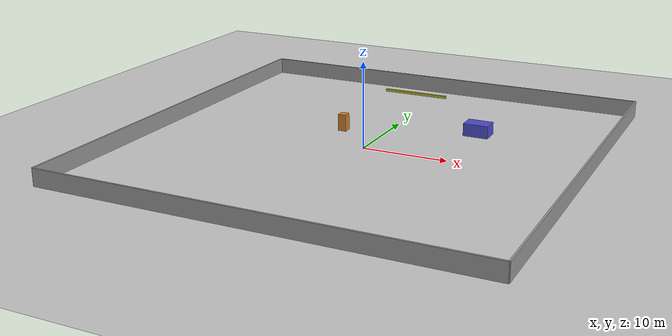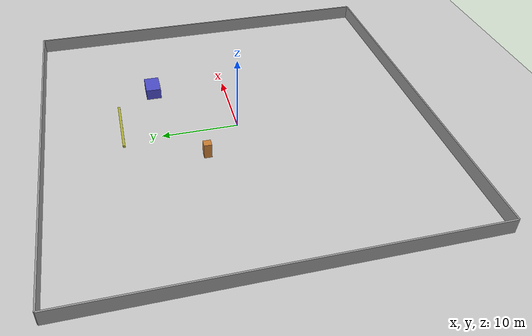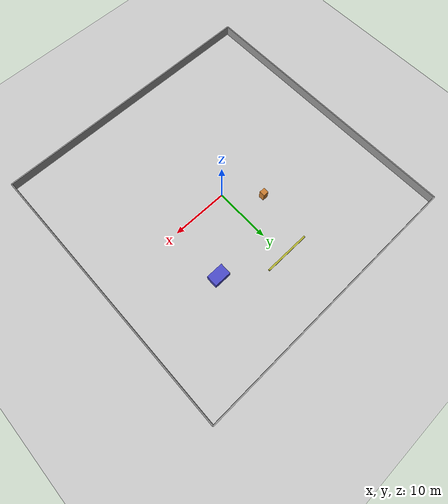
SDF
<?xml version="1.0" ?>
<sdf version="1.8">
  <world name="subestacao">

    <physics name="default" type="ignored">
      <max_step_size>0.004</max_step_size>
      <real_time_factor>1.0</real_time_factor>
    </physics>

    <plugin filename="ignition-gazebo-physics-system"
            name="ignition::gazebo::systems::Physics"/>
    <plugin filename="ignition-gazebo-sensors-system"
            name="ignition::gazebo::systems::Sensors">
      <render_engine>ogre</render_engine>
    </plugin>
    <plugin filename="ignition-gazebo-scene-broadcaster-system"
            name="ignition::gazebo::systems::SceneBroadcaster"/>
    <plugin filename="ignition-gazebo-user-commands-system"
            name="ignition::gazebo::systems::UserCommands"/>

    <!-- Sol (luz direcional) -->
    <light type="directional" name="sun">
      <cast_shadows>true</cast_shadows>
      <pose>0 0 10 0 0 0</pose>
      <diffuse>1 1 1 1</diffuse>
      <specular>0.4 0.4 0.4 1</specular>
      <direction>-0.5 0.1 -0.9</direction>
    </light>

    <!-- Chão -->
    <model name="ground_plane">
      <static>true</static>
      <link name="link">
        <collision name="collision">
          <geometry><plane><normal>0 0 1</normal><size>100 100</size></plane></geometry>
        </collision>
        <visual name="visual">
          <geometry><plane><normal>0 0 1</normal><size>100 100</size></plane></geometry>
          <material>
            <ambient>0.8 0.8 0.8 1</ambient>
            <diffuse>0.8 0.8 0.8 1</diffuse>
          </material>
        </visual>
      </link>
    </model>

    <!-- ============ Cerca perimetral (4 lados) ============ -->
    <model name="cerca_norte">
      <static>true</static>
      <pose>0 25 1 0 0 0</pose>
      <link name="link">
        <collision name="col"><geometry><box><size>50 0.2 2</size></box></geometry></collision>
        <visual name="vis">
          <geometry><box><size>50 0.2 2</size></box></geometry>
          <material><diffuse>0.6 0.6 0.6 1</diffuse></material>
        </visual>
      </link>
    </model>
    <model name="cerca_sul">
      <static>true</static>
      <pose>0 -25 1 0 0 0</pose>
      <link name="link">
        <collision name="col"><geometry><box><size>50 0.2 2</size></box></geometry></collision>
        <visual name="vis">
          <geometry><box><size>50 0.2 2</size></box></geometry>
          <material><diffuse>0.6 0.6 0.6 1</diffuse></material>
        </visual>
      </link>
    </model>
    <model name="cerca_leste">
      <static>true</static>
      <pose>25 0 1 0 0 1.5708</pose>
      <link name="link">
        <collision name="col"><geometry><box><size>50 0.2 2</size></box></geometry></collision>
        <visual name="vis">
          <geometry><box><size>50 0.2 2</size></box></geometry>
          <material><diffuse>0.6 0.6 0.6 1</diffuse></material>
        </visual>
      </link>
    </model>
    <model name="cerca_oeste">
      <static>true</static>
      <pose>-25 0 1 0 0 1.5708</pose>
      <link name="link">
        <collision name="col"><geometry><box><size>50 0.2 2</size></box></geometry></collision>
        <visual name="vis">
          <geometry><box><size>50 0.2 2</size></box></geometry>
          <material><diffuse>0.6 0.6 0.6 1</diffuse></material>
        </visual>
      </link>
    </model>

    <!-- ============ Transformador 1 (anomalia térmica) ============ -->
    <model name="transformador_1">
      <static>true</static>
      <pose>10 10 0.75 0 0 0</pose>
      <link name="link">
        <collision name="col"><geometry><box><size>3 2 1.5</size></box></geometry></collision>
        <visual name="vis">
          <geometry><box><size>3 2 1.5</size></box></geometry>
          <material><diffuse>0.3 0.3 0.8 1</diffuse></material>
        </visual>
      </link>
    </model>

    <!-- ============ Disjuntor 1 (anomalia acústica) ============ -->
    <model name="disjuntor_1">
      <static>true</static>
      <pose>-5 5 1.0 0 0 0</pose>
      <link name="link">
        <collision name="col"><geometry><box><size>1 1 2</size></box></geometry></collision>
        <visual name="vis">
          <geometry><box><size>1 1 2</size></box></geometry>
          <material><diffuse>0.8 0.5 0.2 1</diffuse></material>
        </visual>
      </link>
    </model>

    <!-- ============ Barramento (anomalia térmica) ============ -->
    <model name="barramento_entrada">
      <static>true</static>
      <pose>0 15 2.5 0 0 0</pose>
      <link name="link">
        <collision name="col"><geometry><box><size>8 0.3 0.3</size></box></geometry></collision>
        <visual name="vis">
          <geometry><box><size>8 0.3 0.3</size></box></geometry>
          <material><diffuse>0.7 0.7 0.2 1</diffuse></material>
        </visual>
      </link>
    </model>

  </world>
</sdf>
